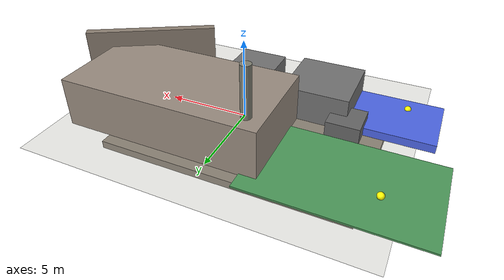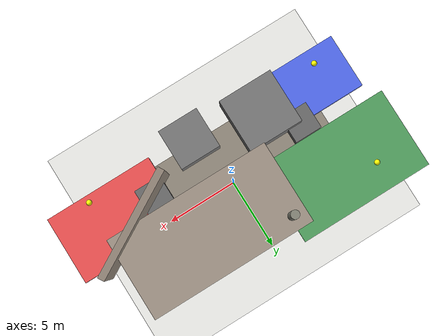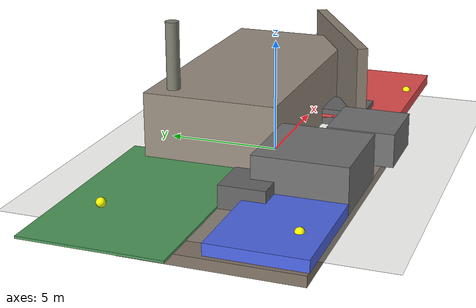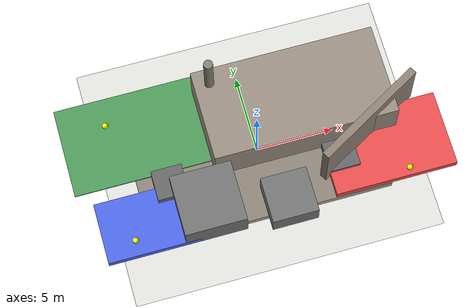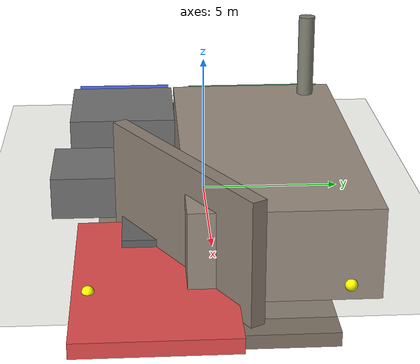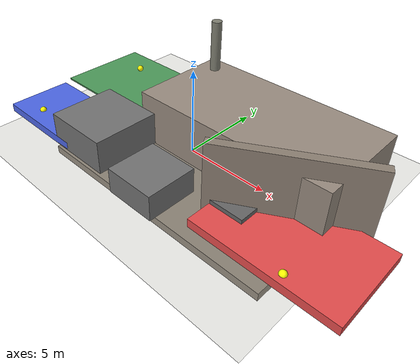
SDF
<?xml version="1.0"?>
<!--
  SAR Disaster Scenario World for Drone Exploration.
  Features: varied elevations, rubble, collapsed structures,
  safe zones (green) and hazard zones (red), lighting, KML boundaries.
-->
<sdf version="1.9">
  <world name="sar_disaster">
    <physics name="fast" type="ignored">
      <max_step_size>0.002</max_step_size>
      <real_time_factor>1.0</real_time_factor>
      <real_time_speed>1.0</real_time_speed>
    </physics>

    <plugin filename="gz-sim-physics-system"
            name="gz::sim::systems::Physics"/>
    <plugin filename="gz-sim-scene-broadcaster-system"
            name="gz::sim::systems::SceneBroadcaster"/>
    <plugin filename="gz-sim-user-commands-system"
            name="gz::sim::systems::UserCommands"/>
    <plugin filename="gz-sim-sensors-system"
            name="gz::sim::systems::Sensors">
      <render_engine>ogre2</render_engine>
    </plugin>
    <plugin filename="gz-sim-imu-system"
            name="gz::sim::systems::Imu"/>

    <light type="directional" name="sun">
      <cast_shadows>true</cast_shadows>
      <pose>0 0 20 0 0 0</pose>
      <diffuse>0.7 0.6 0.5 1</diffuse>
      <specular>0.1 0.1 0.1 1</specular>
      <attenuation>
        <range>200</range>
        <constant>1.0</constant>
        <linear>0.02</linear>
        <quadratic>0.002</quadratic>
      </attenuation>
      <direction>-0.3 0.2 -0.85</direction>
    </light>

    <ambient>0.3 0.3 0.35 1</ambient>
    <background>0.6 0.6 0.7 1</background>
    <shadows>true</shadows>

    <!-- FLOOR -->
    <model name="floor_ground">
      <static>true</static>
      <link name="link">
        <collision name="collision"><geometry><plane><normal>0 0 1</normal><size>20 16</size></plane></geometry></collision>
        <visual><geometry><plane><normal>0 0 1</normal><size>20 16</size></plane></geometry>
          <material><ambient>0.55 0.55 0.5 1</ambient><diffuse>0.7 0.7 0.65 1</diffuse><specular>0.1 0.1 0.1 1</specular></material></visual>
      </link>
    </model>

    <!-- Ruined lower floor -->
    <model name="ruined_floor_1">
      <static>true</static>
      <link name="link">
        <collision name="collision"><geometry><box><size>16 8 0.5</size></box></geometry></collision>
        <visual><geometry><box><size>16 8 0.5</size></box></geometry>
          <material><ambient>0.4 0.35 0.3 1</ambient><diffuse>0.5 0.45 0.4 1</diffuse><specular>0.05 0.05 0.05 1</specular></material></visual>
        <pose>0 0 -2 0 0 0</pose>
      </link>
    </model>

    <!-- Collapsed building -->
    <model name="collapsed_building_1">
      <static>true</static>
      <link name="link">
        <collision name="collision"><geometry><box><size>12 6 3</size></box></geometry></collision>
        <visual><geometry><box><size>12 6 3</size></box></geometry>
          <material><ambient>0.5 0.4 0.35 1</ambient><diffuse>0.6 0.55 0.5 1</diffuse><specular>0.1 0.1 0.1 1</specular></material></visual>
        <pose>3 2 1.5 0 0 0</pose>
      </link>
    </model>

    <!-- Tilted wall -->
    <model name="tilted_wall_1">
      <static>true</static>
      <link name="link">
        <collision name="collision"><geometry><box><size>8 0.5 4</size></box></geometry></collision>
        <visual><geometry><box><size>8 0.5 4</size></box></geometry>
          <material><ambient>0.45 0.4 0.35 1</ambient><diffuse>0.55 0.5 0.45 1</diffuse><specular>0.08 0.08 0.08 1</specular></material></visual>
        <pose>7 -1 2 0 0 0.5236</pose>
      </link>
    </model>

    <!-- Rubble pile -->
    <model name="rubble_pile_1">
      <static>true</static>
      <link name="link">
        <collision name="collision"><geometry><box><size>4 4 2</size></box></geometry></collision>
        <visual><geometry><box><size>4 4 2</size></box></geometry>
          <material><ambient>0.35 0.35 0.35 1</ambient><diffuse>0.45 0.45 0.45 1</diffuse><specular>0.1 0.1 0.1 1</specular></material></visual>
        <pose>-4 -3 1 0 0 0</pose>
      </link>
    </model>

    <!-- Fallen beam -->
    <model name="fallen_beam_1">
      <static>true</static>
      <link name="link">
        <collision name="collision"><geometry><cylinder><radius>0.3</radius><length>6</length></cylinder></geometry></collision>
        <visual><geometry><cylinder><radius>0.3</radius><length>6</length></cylinder></geometry>
          <material><ambient>0.4 0.4 0.35 1</ambient><diffuse>0.5 0.5 0.45 1</diffuse><specular>0.1 0.1 0.1 1</specular></material></visual>
        <pose>-2 4 3 0 0 0</pose>
      </link>
    </model>

    <!-- Small rubble -->
    <model name="rubble_small_1">
      <static>true</static>
      <link name="link">
        <collision name="collision"><geometry><box><size>2 2 1</size></box></geometry></collision>
        <visual><geometry><box><size>2 2 1</size></box></geometry>
          <material><ambient>0.3 0.3 0.3 1</ambient><diffuse>0.4 0.4 0.4 1</diffuse><specular>0.05 0.05 0.05 1</specular></material></visual>
        <pose>-6 -1 0.5 0 0 0</pose>
      </link>
    </model>

    <model name="rubble_small_2">
      <static>true</static>
      <link name="link">
        <collision name="collision"><geometry><box><size>2 2 0.75</size></box></geometry></collision>
        <visual><geometry><box><size>2 2 0.75</size></box></geometry>
          <material><ambient>0.3 0.3 0.3 1</ambient><diffuse>0.4 0.4 0.4 1</diffuse><specular>0.05 0.05 0.05 1</specular></material></visual>
        <pose>5 -2 0.375 0 0 0</pose>
      </link>
    </model>

    <model name="rubble_medium_1">
      <static>true</static>
      <link name="link">
        <collision name="collision"><geometry><box><size>3 3 1.5</size></box></geometry></collision>
        <visual><geometry><box><size>3 3 1.5</size></box></geometry>
          <material><ambient>0.35 0.35 0.35 1</ambient><diffuse>0.45 0.45 0.45 1</diffuse><specular>0.06 0.06 0.06 1</specular></material></visual>
        <pose>1 -4 0.75 0 0 0</pose>
      </link>
    </model>

    <!-- Safe zone (✓): cleared open area -->
    <model name="safe_zone_1">
      <static>true</static>
      <link name="link">
        <collision name="collision"><geometry><box><size>10 6 0.1</size></box></geometry></collision>
        <visual><geometry><box><size>10 6 0.1</size></box></geometry>
          <material><ambient>0.2 0.5 0.2 1</ambient><diffuse>0.3 0.6 0.35 1</diffuse><specular>0.05 0.05 0.05 1</specular></material></visual>
        <pose>-7 3 0.05 0 0 0</pose>
      </link>
    </model>

    <!-- Hazard zone (X): fire-damaged area -->
    <model name="hazard_zone_fire_1">
      <static>true</static>
      <link name="link">
        <collision name="collision"><geometry><box><size>8 5 0.5</size></box></geometry></collision>
        <visual><geometry><box><size>8 5 0.5</size></box></geometry>
          <material><ambient>0.8 0.2 0.2 1</ambient><diffuse>0.9 0.3 0.3 1</diffuse><specular>0.1 0.1 0.1 1</specular></material></visual>
        <pose>8 -2 0.25 0 0 0</pose>
      </link>
    </model>

    <!-- Hazard zone (X): flood-damaged area -->
    <model name="hazard_zone_flood_1">
      <static>true</static>
      <link name="link">
        <collision name="collision"><geometry><box><size>6 4 0.5</size></box></geometry></collision>
        <visual><geometry><box><size>6 4 0.5</size></box></geometry>
          <material><ambient>0.2 0.3 0.8 1</ambient><diffuse>0.3 0.4 0.9 1</diffuse><specular>0.05 0.05 0.05 1</specular></material></visual>
        <pose>-8 -3 0.25 0 0 0</pose>
      </link>
    </model>

    <!-- KML-defined boundary markers (4 corner points) -->
    <model name="boundary_marker_1">
      <static>true</static>
      <link name="link">
        <collision name="collision"><geometry><sphere><radius>0.2</radius></sphere></geometry></collision>
        <visual><geometry><sphere><radius>0.2</radius></sphere></geometry>
          <material><ambient>1 1 0 1</ambient><diffuse>1 1 0 1</diffuse><specular>0.1 0.1 0.1 1</specular></material></visual>
        <pose>-9 -4 0.5 0 0 0</pose>
      </link>
    </model>

    <model name="boundary_marker_2">
      <static>true</static>
      <link name="link">
        <collision name="collision"><geometry><sphere><radius>0.2</radius></sphere></geometry></collision>
        <visual><geometry><sphere><radius>0.2</radius></sphere></geometry>
          <material><ambient>1 1 0 1</ambient><diffuse>1 1 0 1</diffuse><specular>0.1 0.1 0.1 1</specular></material></visual>
        <pose>9 -4 0.5 0 0 0</pose>
      </link>
    </model>

    <model name="boundary_marker_3">
      <static>true</static>
      <link name="link">
        <collision name="collision"><geometry><sphere><radius>0.2</radius></sphere></geometry></collision>
        <visual><geometry><sphere><radius>0.2</radius></sphere></geometry>
          <material><ambient>1 1 0 1</ambient><diffuse>1 1 0 1</diffuse><specular>0.1 0.1 0.1 1</specular></material></visual>
        <pose>9 4 0.5 0 0 0</pose>
      </link>
    </model>

    <model name="boundary_marker_4">
      <static>true</static>
      <link name="link">
        <collision name="collision"><geometry><sphere><radius>0.2</radius></sphere></geometry></collision>
        <visual><geometry><sphere><radius>0.2</radius></sphere></geometry>
          <material><ambient>1 1 0 1</ambient><diffuse>1 1 0 1</diffuse><specular>0.1 0.1 0.1 1</specular></material></visual>
        <pose>-9 4 0.5 0 0 0</pose>
      </link>
    </model>

  </world>
</sdf>
